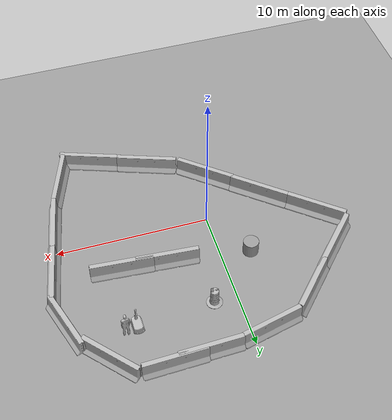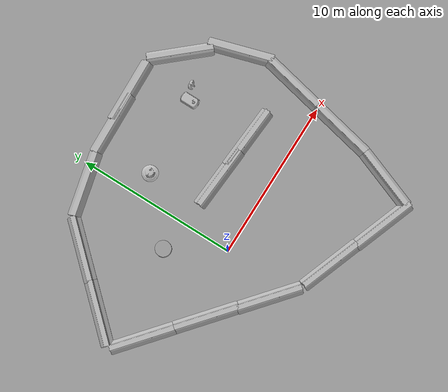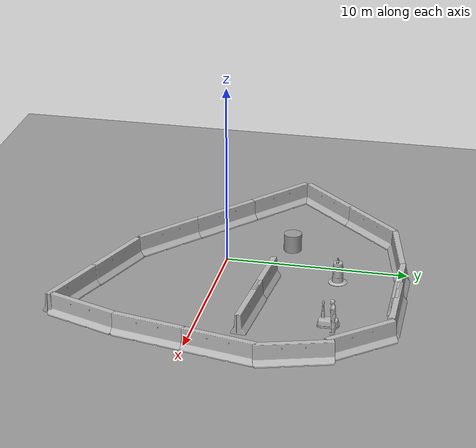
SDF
<sdf version="1.6">
 <world name="default">
  <light name="sun" type="directional">
   <pose>0 0 10 0 -0 0</pose>
   <diffuse>0.8 0.8 0.8 1</diffuse>
   <specular>0.2 0.2 0.2 1</specular>
   <attenuation>
    <range>1000</range>
    <constant>0.9</constant>
    <linear>0.01</linear>
    <quadratic>0.001</quadratic>
   </attenuation>
   <direction>0.5 0.1 -0.9</direction>
  </light>
  <scene><ambient>0.4 0.4 0.4 1</ambient><background>0.7 0.7 0.7 1</background><shadows>1</shadows></scene>
  <physics name="default_physics" default="0" type="ode">
   <max_step_size>0.01</max_step_size>
   <real_time_factor>1</real_time_factor>
   <real_time_update_rate>100</real_time_update_rate>
  </physics>
  <model name="jersey_barrier">
   <static>1</static>
   <link name="link">
    <visual name="visual">
     <geometry><mesh><uri>model://jersey_barrier/meshes/jersey_barrier.dae</uri></mesh></geometry>
    </visual>
    <collision name="upright">
     <pose>0 0 0.5715 0 -0 0</pose>
     <geometry><box><size>4.06542 0.3063 1.143</size></box></geometry>
    </collision>
    <collision name="base">
     <pose>0 0 0.032258 0 -0 0</pose>
     <geometry><box><size>4.06542 0.8107 0.064516</size></box></geometry>
    </collision>
    <collision name="base2">
     <pose>0 0 0.1 0 -0 0</pose>
     <geometry><box><size>4.06542 0.65 0.1</size></box></geometry>
    </collision>
    <collision name="base3">
     <pose>0 0 0.2 0 -0 0</pose>
     <geometry><box><size>4.06542 0.5 0.1</size></box></geometry>
    </collision>
    <collision name="left-angle">
     <pose>0 -0.224 0.2401 0.9 -0 0</pose>
     <geometry><box><size>4.06542 0.5 0.064516</size></box></geometry>
    </collision>
    <collision name="right-angle">
     <pose>0 0.224 0.2401 -0.9 0 0</pose>
     <geometry><box><size>4.06542 0.5 0.064516</size></box></geometry>
    </collision>
    <velocity_decay><linear>0</linear><angular>0</angular></velocity_decay>
   </link>
   <pose>-4 -1 0 0 0 -0.7</pose>
  </model>
  <model name="ground_plane_0">
   <static>1</static>
   <link name="link">
    <collision name="collision">
     <geometry><plane><normal>0 0 1</normal><size>100 100</size></plane></geometry>
     <surface><friction><ode><mu>100</mu><mu2>50</mu2></ode></friction></surface>
    </collision>
    <visual name="visual">
     <cast_shadows>0</cast_shadows>
     <geometry><plane><normal>0 0 1</normal><size>100 100</size></plane></geometry>
     <material>
      <script><uri>file://media/materials/scripts/gazebo.material</uri><name>Gazebo/Grey</name></script>
     </material>
    </visual>
    <velocity_decay><linear>0</linear><angular>0</angular></velocity_decay>
   </link>
   <pose>0.497681 0 0 0 -0 0</pose>
  </model>
  <model name="unit_cylinder_1">
   <pose>-1.92033 3.31733 0.49912 0 0 -0.141368</pose>
   <link name="link">
    <inertial>
     <mass>1</mass>
     <inertia><ixx>1</ixx><ixy>0</ixy><ixz>0</ixz><iyy>1</iyy><iyz>0</iyz><izz>1</izz></inertia>
    </inertial>
    <collision name="collision">
     <geometry><cylinder><radius>0.5</radius><length>1</length></cylinder></geometry>
    </collision>
    <visual name="visual">
     <geometry><cylinder><radius>0.5</radius><length>1</length></cylinder></geometry>
     <material>
      <script><uri>file://media/materials/scripts/gazebo.material</uri><name>Gazebo/Grey</name></script>
     </material>
    </visual>
    <velocity_decay><linear>0</linear><angular>0</angular></velocity_decay>
   </link>
   <static>0</static>
  </model>
  <gravity>0 0 -9.8</gravity>
  <magnetic_field>6e-06 2.3e-05 -4.2e-05</magnetic_field>
  <atmosphere type="adiabatic"/>
  <spherical_coordinates>
   <surface_model>EARTH_WGS84</surface_model>
   <latitude_deg>0</latitude_deg>
   <longitude_deg>0</longitude_deg>
   <elevation>0</elevation>
   <heading_deg>0</heading_deg>
  </spherical_coordinates>
  <model name="jersey_barrier_clone">
   <static>1</static>
   <link name="link">
    <visual name="visual">
     <geometry><mesh><uri>model://jersey_barrier/meshes/jersey_barrier.dae</uri></mesh></geometry>
    </visual>
    <collision name="upright">
     <pose>0 0 0.5715 0 -0 0</pose>
     <geometry><box><size>4.06542 0.3063 1.143</size></box></geometry>
    </collision>
    <collision name="base">
     <pose>0 0 0.032258 0 -0 0</pose>
     <geometry><box><size>4.06542 0.8107 0.064516</size></box></geometry>
    </collision>
    <collision name="base2">
     <pose>0 0 0.1 0 -0 0</pose>
     <geometry><box><size>4.06542 0.65 0.1</size></box></geometry>
    </collision>
    <collision name="base3">
     <pose>0 0 0.2 0 -0 0</pose>
     <geometry><box><size>4.06542 0.5 0.1</size></box></geometry>
    </collision>
    <collision name="left-angle">
     <pose>0 -0.224 0.2401 0.9 -0 0</pose>
     <geometry><box><size>4.06542 0.5 0.064516</size></box></geometry>
    </collision>
    <collision name="right-angle">
     <pose>0 0.224 0.2401 -0.9 0 0</pose>
     <geometry><box><size>4.06542 0.5 0.064516</size></box></geometry>
    </collision>
    <velocity_decay><linear>0</linear><angular>0</angular></velocity_decay>
   </link>
   <pose>-1.02335 -3.54496 0 0 0 -0.7</pose>
  </model>
  <model name="jersey_barrier_clone_clone">
   <static>1</static>
   <link name="link">
    <visual name="visual">
     <geometry><mesh><uri>model://jersey_barrier/meshes/jersey_barrier.dae</uri></mesh></geometry>
    </visual>
    <collision name="upright">
     <pose>0 0 0.5715 0 -0 0</pose>
     <geometry><box><size>4.06542 0.3063 1.143</size></box></geometry>
    </collision>
    <collision name="base">
     <pose>0 0 0.032258 0 -0 0</pose>
     <geometry><box><size>4.06542 0.8107 0.064516</size></box></geometry>
    </collision>
    <collision name="base2">
     <pose>0 0 0.1 0 -0 0</pose>
     <geometry><box><size>4.06542 0.65 0.1</size></box></geometry>
    </collision>
    <collision name="base3">
     <pose>0 0 0.2 0 -0 0</pose>
     <geometry><box><size>4.06542 0.5 0.1</size></box></geometry>
    </collision>
    <collision name="left-angle">
     <pose>0 -0.224 0.2401 0.9 -0 0</pose>
     <geometry><box><size>4.06542 0.5 0.064516</size></box></geometry>
    </collision>
    <collision name="right-angle">
     <pose>0 0.224 0.2401 -0.9 0 0</pose>
     <geometry><box><size>4.06542 0.5 0.064516</size></box></geometry>
    </collision>
    <velocity_decay><linear>0</linear><angular>0</angular></velocity_decay>
   </link>
   <pose>2.56002 -5.58234 0 0 0 -0.349981</pose>
  </model>
  <model name="jersey_barrier_clone_clone_clone">
   <static>1</static>
   <link name="link">
    <visual name="visual">
     <geometry><mesh><uri>model://jersey_barrier/meshes/jersey_barrier.dae</uri></mesh></geometry>
    </visual>
    <collision name="upright">
     <pose>0 0 0.5715 0 -0 0</pose>
     <geometry><box><size>4.06542 0.3063 1.143</size></box></geometry>
    </collision>
    <collision name="base">
     <pose>0 0 0.032258 0 -0 0</pose>
     <geometry><box><size>4.06542 0.8107 0.064516</size></box></geometry>
    </collision>
    <collision name="base2">
     <pose>0 0 0.1 0 -0 0</pose>
     <geometry><box><size>4.06542 0.65 0.1</size></box></geometry>
    </collision>
    <collision name="base3">
     <pose>0 0 0.2 0 -0 0</pose>
     <geometry><box><size>4.06542 0.5 0.1</size></box></geometry>
    </collision>
    <collision name="left-angle">
     <pose>0 -0.224 0.2401 0.9 -0 0</pose>
     <geometry><box><size>4.06542 0.5 0.064516</size></box></geometry>
    </collision>
    <collision name="right-angle">
     <pose>0 0.224 0.2401 -0.9 0 0</pose>
     <geometry><box><size>4.06542 0.5 0.064516</size></box></geometry>
    </collision>
    <velocity_decay><linear>0</linear><angular>0</angular></velocity_decay>
   </link>
   <pose>6.24068 -6.95969 0 0 0 -0.349981</pose>
  </model>
  <model name="jersey_barrier_clone_clone_clone_clone">
   <static>1</static>
   <link name="link">
    <visual name="visual">
     <geometry><mesh><uri>model://jersey_barrier/meshes/jersey_barrier.dae</uri></mesh></geometry>
    </visual>
    <collision name="upright">
     <pose>0 0 0.5715 0 -0 0</pose>
     <geometry><box><size>4.06542 0.3063 1.143</size></box></geometry>
    </collision>
    <collision name="base">
     <pose>0 0 0.032258 0 -0 0</pose>
     <geometry><box><size>4.06542 0.8107 0.064516</size></box></geometry>
    </collision>
    <collision name="base2">
     <pose>0 0 0.1 0 -0 0</pose>
     <geometry><box><size>4.06542 0.65 0.1</size></box></geometry>
    </collision>
    <collision name="base3">
     <pose>0 0 0.2 0 -0 0</pose>
     <geometry><box><size>4.06542 0.5 0.1</size></box></geometry>
    </collision>
    <collision name="left-angle">
     <pose>0 -0.224 0.2401 0.9 -0 0</pose>
     <geometry><box><size>4.06542 0.5 0.064516</size></box></geometry>
    </collision>
    <collision name="right-angle">
     <pose>0 0.224 0.2401 -0.9 0 0</pose>
     <geometry><box><size>4.06542 0.5 0.064516</size></box></geometry>
    </collision>
    <velocity_decay><linear>0</linear><angular>0</angular></velocity_decay>
   </link>
   <pose>8.63653 -5.64703 0 0 -0 1.21571</pose>
  </model>
  <model name="jersey_barrier_clone_clone_clone_clone_clone">
   <static>1</static>
   <link name="link">
    <visual name="visual">
     <geometry><mesh><uri>model://jersey_barrier/meshes/jersey_barrier.dae</uri></mesh></geometry>
    </visual>
    <collision name="upright">
     <pose>0 0 0.5715 0 -0 0</pose>
     <geometry><box><size>4.06542 0.3063 1.143</size></box></geometry>
    </collision>
    <collision name="base">
     <pose>0 0 0.032258 0 -0 0</pose>
     <geometry><box><size>4.06542 0.8107 0.064516</size></box></geometry>
    </collision>
    <collision name="base2">
     <pose>0 0 0.1 0 -0 0</pose>
     <geometry><box><size>4.06542 0.65 0.1</size></box></geometry>
    </collision>
    <collision name="base3">
     <pose>0 0 0.2 0 -0 0</pose>
     <geometry><box><size>4.06542 0.5 0.1</size></box></geometry>
    </collision>
    <collision name="left-angle">
     <pose>0 -0.224 0.2401 0.9 -0 0</pose>
     <geometry><box><size>4.06542 0.5 0.064516</size></box></geometry>
    </collision>
    <collision name="right-angle">
     <pose>0 0.224 0.2401 -0.9 0 0</pose>
     <geometry><box><size>4.06542 0.5 0.064516</size></box></geometry>
    </collision>
    <velocity_decay><linear>0</linear><angular>0</angular></velocity_decay>
   </link>
   <pose>9.74842 -1.83732 0 0 -0 1.36354</pose>
  </model>
  <model name="jersey_barrier_clone_clone_clone_clone_clone_clone">
   <static>1</static>
   <link name="link">
    <visual name="visual">
     <geometry><mesh><uri>model://jersey_barrier/meshes/jersey_barrier.dae</uri></mesh></geometry>
    </visual>
    <collision name="upright">
     <pose>0 0 0.5715 0 -0 0</pose>
     <geometry><box><size>4.06542 0.3063 1.143</size></box></geometry>
    </collision>
    <collision name="base">
     <pose>0 0 0.032258 0 -0 0</pose>
     <geometry><box><size>4.06542 0.8107 0.064516</size></box></geometry>
    </collision>
    <collision name="base2">
     <pose>0 0 0.1 0 -0 0</pose>
     <geometry><box><size>4.06542 0.65 0.1</size></box></geometry>
    </collision>
    <collision name="base3">
     <pose>0 0 0.2 0 -0 0</pose>
     <geometry><box><size>4.06542 0.5 0.1</size></box></geometry>
    </collision>
    <collision name="left-angle">
     <pose>0 -0.224 0.2401 0.9 -0 0</pose>
     <geometry><box><size>4.06542 0.5 0.064516</size></box></geometry>
    </collision>
    <collision name="right-angle">
     <pose>0 0.224 0.2401 -0.9 0 0</pose>
     <geometry><box><size>4.06542 0.5 0.064516</size></box></geometry>
    </collision>
    <velocity_decay><linear>0</linear><angular>0</angular></velocity_decay>
   </link>
   <pose>10.564 1.98706 0 0 -0 1.36354</pose>
  </model>
  <model name="jersey_barrier_clone_0">
   <static>1</static>
   <link name="link">
    <visual name="visual">
     <geometry><mesh><uri>model://jersey_barrier/meshes/jersey_barrier.dae</uri></mesh></geometry>
    </visual>
    <collision name="upright">
     <pose>0 0 0.5715 0 -0 0</pose>
     <geometry><box><size>4.06542 0.3063 1.143</size></box></geometry>
    </collision>
    <collision name="base">
     <pose>0 0 0.032258 0 -0 0</pose>
     <geometry><box><size>4.06542 0.8107 0.064516</size></box></geometry>
    </collision>
    <collision name="base2">
     <pose>0 0 0.1 0 -0 0</pose>
     <geometry><box><size>4.06542 0.65 0.1</size></box></geometry>
    </collision>
    <collision name="base3">
     <pose>0 0 0.2 0 -0 0</pose>
     <geometry><box><size>4.06542 0.5 0.1</size></box></geometry>
    </collision>
    <collision name="left-angle">
     <pose>0 -0.224 0.2401 0.9 -0 0</pose>
     <geometry><box><size>4.06542 0.5 0.064516</size></box></geometry>
    </collision>
    <collision name="right-angle">
     <pose>0 0.224 0.2401 -0.9 0 0</pose>
     <geometry><box><size>4.06542 0.5 0.064516</size></box></geometry>
    </collision>
    <velocity_decay><linear>0</linear><angular>0</angular></velocity_decay>
   </link>
   <pose>-7.05686 1.56354 0 0 0 -0.7</pose>
  </model>
  <model name="jersey_barrier_clone_0_clone">
   <static>1</static>
   <link name="link">
    <visual name="visual">
     <geometry><mesh><uri>model://jersey_barrier/meshes/jersey_barrier.dae</uri></mesh></geometry>
    </visual>
    <collision name="upright">
     <pose>0 0 0.5715 0 -0 0</pose>
     <geometry><box><size>4.06542 0.3063 1.143</size></box></geometry>
    </collision>
    <collision name="base">
     <pose>0 0 0.032258 0 -0 0</pose>
     <geometry><box><size>4.06542 0.8107 0.064516</size></box></geometry>
    </collision>
    <collision name="base2">
     <pose>0 0 0.1 0 -0 0</pose>
     <geometry><box><size>4.06542 0.65 0.1</size></box></geometry>
    </collision>
    <collision name="base3">
     <pose>0 0 0.2 0 -0 0</pose>
     <geometry><box><size>4.06542 0.5 0.1</size></box></geometry>
    </collision>
    <collision name="left-angle">
     <pose>0 -0.224 0.2401 0.9 -0 0</pose>
     <geometry><box><size>4.06542 0.5 0.064516</size></box></geometry>
    </collision>
    <collision name="right-angle">
     <pose>0 0.224 0.2401 -0.9 0 0</pose>
     <geometry><box><size>4.06542 0.5 0.064516</size></box></geometry>
    </collision>
    <velocity_decay><linear>0</linear><angular>0</angular></velocity_decay>
   </link>
   <pose>-7.18628 4.5271 0 0 -0 0.820277</pose>
  </model>
  <model name="jersey_barrier_clone_0_clone_clone">
   <static>1</static>
   <link name="link">
    <visual name="visual">
     <geometry><mesh><uri>model://jersey_barrier/meshes/jersey_barrier.dae</uri></mesh></geometry>
    </visual>
    <collision name="upright">
     <pose>0 0 0.5715 0 -0 0</pose>
     <geometry><box><size>4.06542 0.3063 1.143</size></box></geometry>
    </collision>
    <collision name="base">
     <pose>0 0 0.032258 0 -0 0</pose>
     <geometry><box><size>4.06542 0.8107 0.064516</size></box></geometry>
    </collision>
    <collision name="base2">
     <pose>0 0 0.1 0 -0 0</pose>
     <geometry><box><size>4.06542 0.65 0.1</size></box></geometry>
    </collision>
    <collision name="base3">
     <pose>0 0 0.2 0 -0 0</pose>
     <geometry><box><size>4.06542 0.5 0.1</size></box></geometry>
    </collision>
    <collision name="left-angle">
     <pose>0 -0.224 0.2401 0.9 -0 0</pose>
     <geometry><box><size>4.06542 0.5 0.064516</size></box></geometry>
    </collision>
    <collision name="right-angle">
     <pose>0 0.224 0.2401 -0.9 0 0</pose>
     <geometry><box><size>4.06542 0.5 0.064516</size></box></geometry>
    </collision>
    <velocity_decay><linear>0</linear><angular>0</angular></velocity_decay>
   </link>
   <pose>-4.51548 7.40302 0 0 -0 0.820277</pose>
  </model>
  <model name="jersey_barrier_clone_clone_clone_clone_clone_clone_clone">
   <static>1</static>
   <link name="link">
    <visual name="visual">
     <geometry><mesh><uri>model://jersey_barrier/meshes/jersey_barrier.dae</uri></mesh></geometry>
    </visual>
    <collision name="upright">
     <pose>0 0 0.5715 0 -0 0</pose>
     <geometry><box><size>4.06542 0.3063 1.143</size></box></geometry>
    </collision>
    <collision name="base">
     <pose>0 0 0.032258 0 -0 0</pose>
     <geometry><box><size>4.06542 0.8107 0.064516</size></box></geometry>
    </collision>
    <collision name="base2">
     <pose>0 0 0.1 0 -0 0</pose>
     <geometry><box><size>4.06542 0.65 0.1</size></box></geometry>
    </collision>
    <collision name="base3">
     <pose>0 0 0.2 0 -0 0</pose>
     <geometry><box><size>4.06542 0.5 0.1</size></box></geometry>
    </collision>
    <collision name="left-angle">
     <pose>0 -0.224 0.2401 0.9 -0 0</pose>
     <geometry><box><size>4.06542 0.5 0.064516</size></box></geometry>
    </collision>
    <collision name="right-angle">
     <pose>0 0.224 0.2401 -0.9 0 0</pose>
     <geometry><box><size>4.06542 0.5 0.064516</size></box></geometry>
    </collision>
    <velocity_decay><linear>0</linear><angular>0</angular></velocity_decay>
   </link>
   <pose>10.4984 5.69966 0 0 -0 1.8628</pose>
  </model>
  <model name="jersey_barrier_clone_clone_clone_clone_clone_clone_clone_clone">
   <static>1</static>
   <link name="link">
    <visual name="visual">
     <geometry><mesh><uri>model://jersey_barrier/meshes/jersey_barrier.dae</uri></mesh></geometry>
    </visual>
    <collision name="upright">
     <pose>0 0 0.5715 0 -0 0</pose>
     <geometry><box><size>4.06542 0.3063 1.143</size></box></geometry>
    </collision>
    <collision name="base">
     <pose>0 0 0.032258 0 -0 0</pose>
     <geometry><box><size>4.06542 0.8107 0.064516</size></box></geometry>
    </collision>
    <collision name="base2">
     <pose>0 0 0.1 0 -0 0</pose>
     <geometry><box><size>4.06542 0.65 0.1</size></box></geometry>
    </collision>
    <collision name="base3">
     <pose>0 0 0.2 0 -0 0</pose>
     <geometry><box><size>4.06542 0.5 0.1</size></box></geometry>
    </collision>
    <collision name="left-angle">
     <pose>0 -0.224 0.2401 0.9 -0 0</pose>
     <geometry><box><size>4.06542 0.5 0.064516</size></box></geometry>
    </collision>
    <collision name="right-angle">
     <pose>0 0.224 0.2401 -0.9 0 0</pose>
     <geometry><box><size>4.06542 0.5 0.064516</size></box></geometry>
    </collision>
    <velocity_decay><linear>0</linear><angular>0</angular></velocity_decay>
   </link>
   <pose>8.49767 8.70888 0 0 -0 2.28867</pose>
  </model>
  <model name="jersey_barrier_clone_clone_clone_clone_clone_clone_clone_clone_clone">
   <static>1</static>
   <link name="link">
    <visual name="visual">
     <geometry><mesh><uri>model://jersey_barrier/meshes/jersey_barrier.dae</uri></mesh></geometry>
    </visual>
    <collision name="upright">
     <pose>0 0 0.5715 0 -0 0</pose>
     <geometry><box><size>4.06542 0.3063 1.143</size></box></geometry>
    </collision>
    <collision name="base">
     <pose>0 0 0.032258 0 -0 0</pose>
     <geometry><box><size>4.06542 0.8107 0.064516</size></box></geometry>
    </collision>
    <collision name="base2">
     <pose>0 0 0.1 0 -0 0</pose>
     <geometry><box><size>4.06542 0.65 0.1</size></box></geometry>
    </collision>
    <collision name="base3">
     <pose>0 0 0.2 0 -0 0</pose>
     <geometry><box><size>4.06542 0.5 0.1</size></box></geometry>
    </collision>
    <collision name="left-angle">
     <pose>0 -0.224 0.2401 0.9 -0 0</pose>
     <geometry><box><size>4.06542 0.5 0.064516</size></box></geometry>
    </collision>
    <collision name="right-angle">
     <pose>0 0.224 0.2401 -0.9 0 0</pose>
     <geometry><box><size>4.06542 0.5 0.064516</size></box></geometry>
    </collision>
    <velocity_decay><linear>0</linear><angular>0</angular></velocity_decay>
   </link>
   <pose>2.78026 9.87687 0 0 0 -3.11479</pose>
  </model>
  <model name="jersey_barrier_clone_clone_clone_clone_clone_clone_clone_clone_clone_clone">
   <static>1</static>
   <link name="link">
    <visual name="visual">
     <geometry><mesh><uri>model://jersey_barrier/meshes/jersey_barrier.dae</uri></mesh></geometry>
    </visual>
    <collision name="upright">
     <pose>0 0 0.5715 0 -0 0</pose>
     <geometry><box><size>4.06542 0.3063 1.143</size></box></geometry>
    </collision>
    <collision name="base">
     <pose>0 0 0.032258 0 -0 0</pose>
     <geometry><box><size>4.06542 0.8107 0.064516</size></box></geometry>
    </collision>
    <collision name="base2">
     <pose>0 0 0.1 0 -0 0</pose>
     <geometry><box><size>4.06542 0.65 0.1</size></box></geometry>
    </collision>
    <collision name="base3">
     <pose>0 0 0.2 0 -0 0</pose>
     <geometry><box><size>4.06542 0.5 0.1</size></box></geometry>
    </collision>
    <collision name="left-angle">
     <pose>0 -0.224 0.2401 0.9 -0 0</pose>
     <geometry><box><size>4.06542 0.5 0.064516</size></box></geometry>
    </collision>
    <collision name="right-angle">
     <pose>0 0.224 0.2401 -0.9 0 0</pose>
     <geometry><box><size>4.06542 0.5 0.064516</size></box></geometry>
    </collision>
    <velocity_decay><linear>0</linear><angular>0</angular></velocity_decay>
   </link>
   <pose>-1.14566 9.33753 0 0 0 -2.91357</pose>
  </model>
  <model name="jersey_barrier_clone_clone_clone_clone_clone_clone_clone_clone_clone_clone_0">
   <static>1</static>
   <link name="link">
    <visual name="visual">
     <geometry><mesh><uri>model://jersey_barrier/meshes/jersey_barrier.dae</uri></mesh></geometry>
    </visual>
    <collision name="upright">
     <pose>0 0 0.5715 0 -0 0</pose>
     <geometry><box><size>4.06542 0.3063 1.143</size></box></geometry>
    </collision>
    <collision name="base">
     <pose>0 0 0.032258 0 -0 0</pose>
     <geometry><box><size>4.06542 0.8107 0.064516</size></box></geometry>
    </collision>
    <collision name="base2">
     <pose>0 0 0.1 0 -0 0</pose>
     <geometry><box><size>4.06542 0.65 0.1</size></box></geometry>
    </collision>
    <collision name="base3">
     <pose>0 0 0.2 0 -0 0</pose>
     <geometry><box><size>4.06542 0.5 0.1</size></box></geometry>
    </collision>
    <collision name="left-angle">
     <pose>0 -0.224 0.2401 0.9 -0 0</pose>
     <geometry><box><size>4.06542 0.5 0.064516</size></box></geometry>
    </collision>
    <collision name="right-angle">
     <pose>0 0.224 0.2401 -0.9 0 0</pose>
     <geometry><box><size>4.06542 0.5 0.064516</size></box></geometry>
    </collision>
    <velocity_decay><linear>0</linear><angular>0</angular></velocity_decay>
   </link>
   <pose>4.99228 10.0159 0 0 0 -3.11479</pose>
  </model>
  <model name="jersey_barrier_clone_clone_clone_clone_clone_clone_clone_clone_0">
   <static>1</static>
   <link name="link">
    <visual name="visual">
     <geometry><mesh><uri>model://jersey_barrier/meshes/jersey_barrier.dae</uri></mesh></geometry>
    </visual>
    <collision name="upright">
     <pose>0 0 0.5715 0 -0 0</pose>
     <geometry><box><size>4.06542 0.3063 1.143</size></box></geometry>
    </collision>
    <collision name="base">
     <pose>0 0 0.032258 0 -0 0</pose>
     <geometry><box><size>4.06542 0.8107 0.064516</size></box></geometry>
    </collision>
    <collision name="base2">
     <pose>0 0 0.1 0 -0 0</pose>
     <geometry><box><size>4.06542 0.65 0.1</size></box></geometry>
    </collision>
    <collision name="base3">
     <pose>0 0 0.2 0 -0 0</pose>
     <geometry><box><size>4.06542 0.5 0.1</size></box></geometry>
    </collision>
    <collision name="left-angle">
     <pose>0 -0.224 0.2401 0.9 -0 0</pose>
     <geometry><box><size>4.06542 0.5 0.064516</size></box></geometry>
    </collision>
    <collision name="right-angle">
     <pose>0 0.224 0.2401 -0.9 0 0</pose>
     <geometry><box><size>4.06542 0.5 0.064516</size></box></geometry>
    </collision>
    <velocity_decay><linear>0</linear><angular>0</angular></velocity_decay>
   </link>
   <pose>3.42903 2.76439 0 0 -0 3.06708</pose>
  </model>
  <model name="warehouse_robot">
   <static>1</static>
   <link name="link">
    <visual name="visual">
     <geometry><mesh><uri>model://warehouse_robot/meshes/robot.dae</uri></mesh></geometry>
    </visual>
    <collision name="collision_base">
     <pose>0 0 0.20437 0 -0 0</pose>
     <geometry><box><size>0.55508 1.0228 0.40874</size></box></geometry>
    </collision>
    <collision name="collision_bumper">
     <pose>0 0 0.062205 0 -0 0</pose>
     <geometry><box><size>0.67266 1.17126 0.12441</size></box></geometry>
    </collision>
    <collision name="collision_column_large">
     <pose>0 -0.27539 0.43738 0 -0 0</pose>
     <geometry><cylinder><radius>0.08652</radius><length>0.87476</length></cylinder></geometry>
    </collision>
    <collision name="collision_column_small">
     <pose>0 -0.27539 0.70424 0 -0 0</pose>
     <geometry><cylinder><radius>0.04261</radius><length>1.40848</length></cylinder></geometry>
    </collision>
   </link>
   <pose>6.42547 6.73763 0 0 -0 0</pose>
  </model>
  <model name="Construction Barrel">
   <link name="link">
    <inertial>
     <pose>0 0 0.4 0 -0 0</pose>
     <mass>500</mass>
     <inertia><ixx>51.2096</ixx><iyy>51.2096</iyy><izz>25</izz><ixy>0</ixy><ixz>0</ixz><iyz>0</iyz></inertia>
    </inertial>
    <collision name="collision">
     <geometry><mesh><uri>model://construction_barrel/meshes/construction_barrel.dae</uri></mesh></geometry>
    </collision>
    <visual name="visual">
     <geometry><mesh><uri>model://construction_barrel/meshes/construction_barrel.dae</uri></mesh></geometry>
    </visual>
   </link>
   <pose>1.48378 6.41686 -9e-05 0.000308 -0.000178 -0.000299</pose>
  </model>
  <model name="person_standing">
   <link name="link">
    <inertial>
     <pose>0 -0.1 0.95 0 -0 0</pose>
     <mass>80</mass>
     <inertia><ixx>24.88</ixx><ixy>0</ixy><ixz>0</ixz><iyy>25.73</iyy><iyz>0</iyz><izz>2.48</izz></inertia>
    </inertial>
    <collision name="bottom">
     <pose>0 -0.1 0.01 0 -0 0</pose>
     <geometry><box><size>0.5 0.35 0.02</size></box></geometry>
    </collision>
    <collision name="person">
     <pose>0 0 0.02 0.04 -0 0</pose>
     <geometry><mesh><uri>model://person_standing/meshes/standing.dae</uri></mesh></geometry>
    </collision>
    <visual name="visual">
     <pose>0 0 0.02 0.04 -0 0</pose>
     <geometry><mesh><uri>model://person_standing/meshes/standing.dae</uri></mesh></geometry>
    </visual>
    <velocity_decay><linear>0</linear><angular>0</angular></velocity_decay>
   </link>
   <pose>7.18807 7.17486 -8e-06 7.1e-05 0.00011 0.006889</pose>
   <static>0</static>
  </model>
  <model name="jersey_barrier_clone_clone_clone_clone_clone_clone_clone_clone_0_clone">
   <static>1</static>
   <link name="link">
    <visual name="visual">
     <geometry><mesh><uri>model://jersey_barrier/meshes/jersey_barrier.dae</uri></mesh></geometry>
    </visual>
    <collision name="upright">
     <pose>0 0 0.5715 0 -0 0</pose>
     <geometry><box><size>4.06542 0.3063 1.143</size></box></geometry>
    </collision>
    <collision name="base">
     <pose>0 0 0.032258 0 -0 0</pose>
     <geometry><box><size>4.06542 0.8107 0.064516</size></box></geometry>
    </collision>
    <collision name="base2">
     <pose>0 0 0.1 0 -0 0</pose>
     <geometry><box><size>4.06542 0.65 0.1</size></box></geometry>
    </collision>
    <collision name="base3">
     <pose>0 0 0.2 0 -0 0</pose>
     <geometry><box><size>4.06542 0.5 0.1</size></box></geometry>
    </collision>
    <collision name="left-angle">
     <pose>0 -0.224 0.2401 0.9 -0 0</pose>
     <geometry><box><size>4.06542 0.5 0.064516</size></box></geometry>
    </collision>
    <collision name="right-angle">
     <pose>0 0.224 0.2401 -0.9 0 0</pose>
     <geometry><box><size>4.06542 0.5 0.064516</size></box></geometry>
    </collision>
    <velocity_decay><linear>0</linear><angular>0</angular></velocity_decay>
   </link>
   <pose>6.31099 2.57187 0 0 -0 3.06708</pose>
  </model>
 </world>
</sdf>
